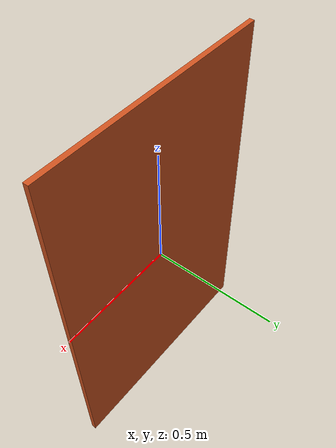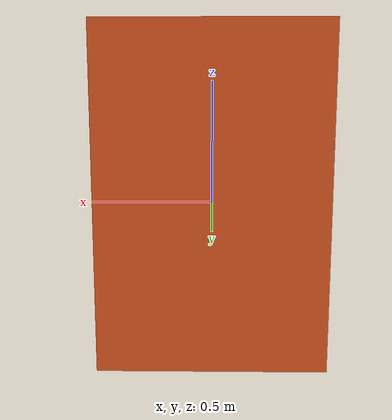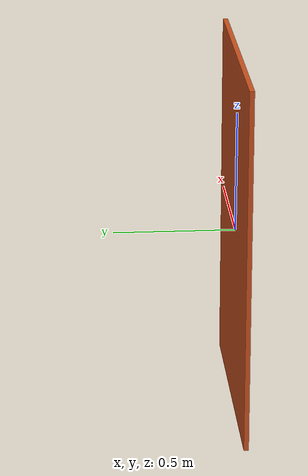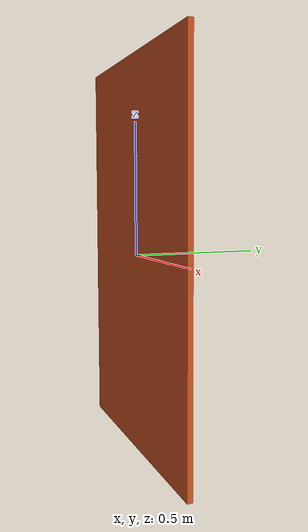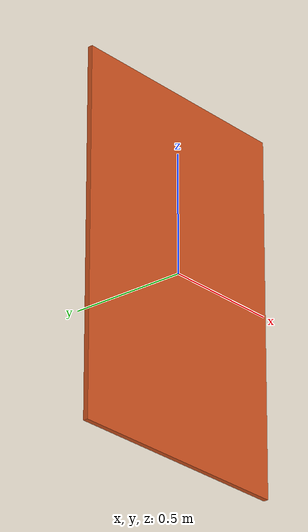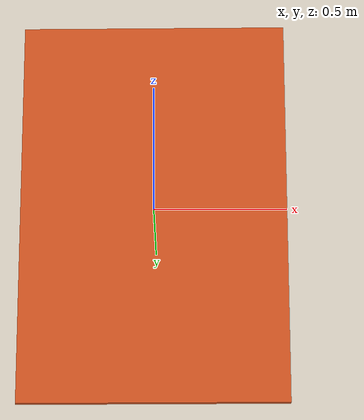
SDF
<?xml version="1.0" ?>
<sdf version="1.5">
  <model name="LaViRIA_panel_S">
    <link name="link">
    <static>true</static>
      <inertial>
        <pose>0 0 0 0 0 0</pose>
        <mass>20.49921667</mass>
        <inertia>
          <ixx>3.84441458</ixx>
          <iyy>5.55205625</iyy>
          <izz>1.70900833</izz>
          <ixy>0</ixy>
          <ixz>0</ixz>
        </inertia>
      </inertial>
      <collision name="collision">
        <geometry>
          <mesh>
            <uri>model://LaViRIA_panel_S/meshes/LaViRIA_panel_S.dae</uri>
          </mesh>
        </geometry>
      </collision>
      <visual name="visual">
        <geometry>
          <mesh>
            <uri>model://LaViRIA_panel_S/meshes/LaViRIA_panel_S.dae</uri>
          </mesh>
        </geometry>
        <material>
          <ambient>0.8 0.32 0.12 1.0</ambient>
          <diffuse>0.8 0.32 0.12 1.0</diffuse>
          <specular>0.8 0.32 0.12 1.0</specular>
          <emissive>0.8 0.32 0.12 1.0</emissive>
        </material>
      </visual>
    </link>
  </model>
</sdf>
